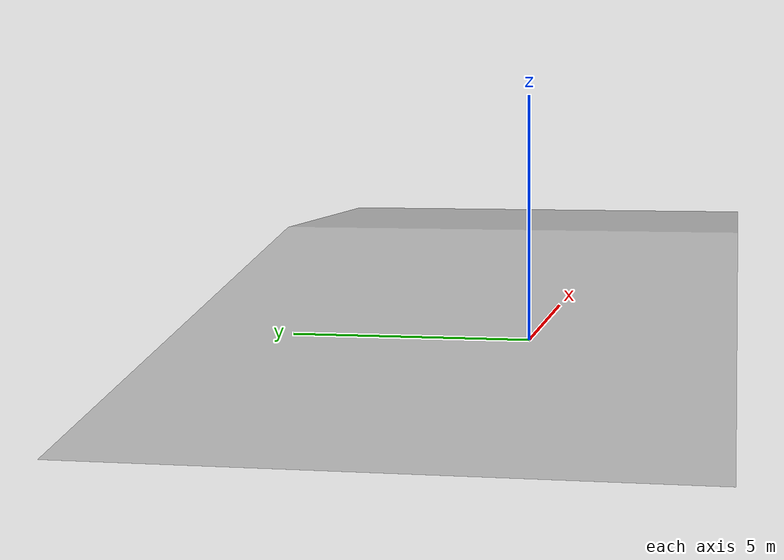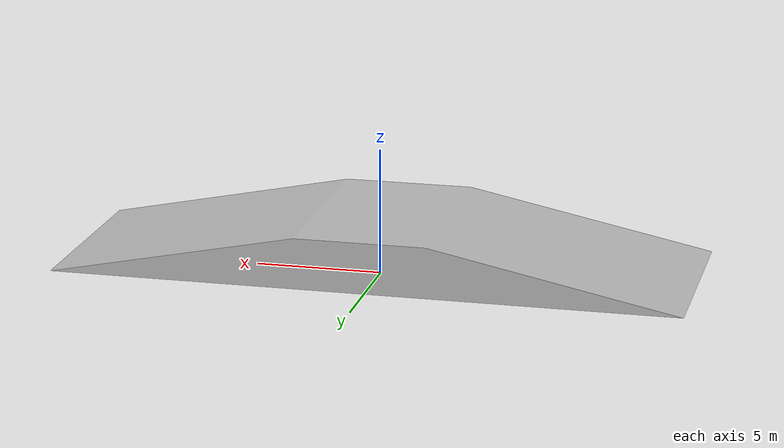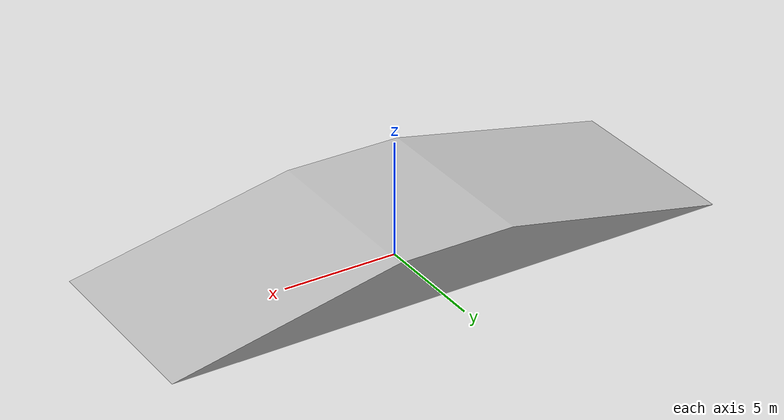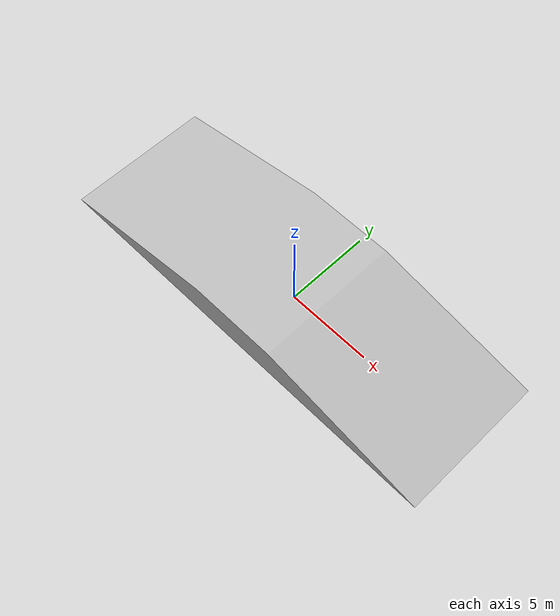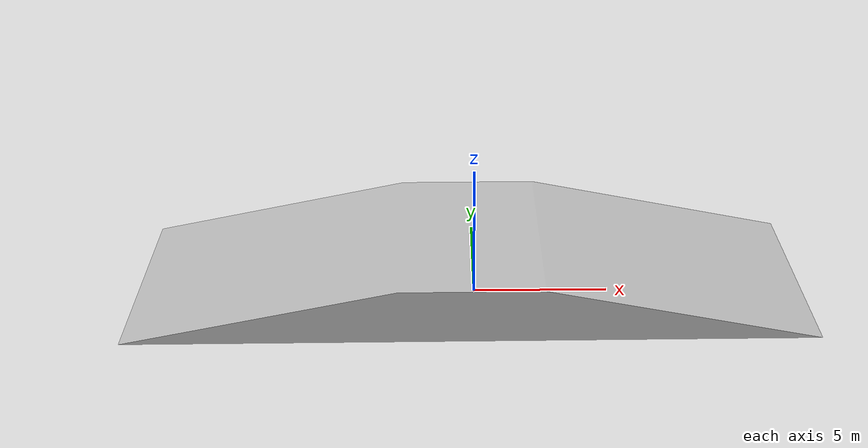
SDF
<?xml version="1.0" ?>
<sdf version="1.6">
  <model name="pavement_hill">
    <static>true</static>
    <link name="hill_link">
      <visual name="visual">
        <geometry>
          <mesh>
            <uri>model://pavement_hill/meshes/pavement_hill.dae</uri>
            <scale>1 1.05 1</scale>
          </mesh>
        </geometry>
        <cast_shadows>false</cast_shadows>
      </visual>
      <collision name="collision">
        <geometry>
          <mesh>
            <uri>model://pavement_hill/meshes/pavement_hill.dae</uri>
            <scale>1 1.05 1</scale>
          </mesh>
        </geometry>
          <cast_shadows>false</cast_shadows>
      </collision>
    </link>
  </model>
</sdf>
